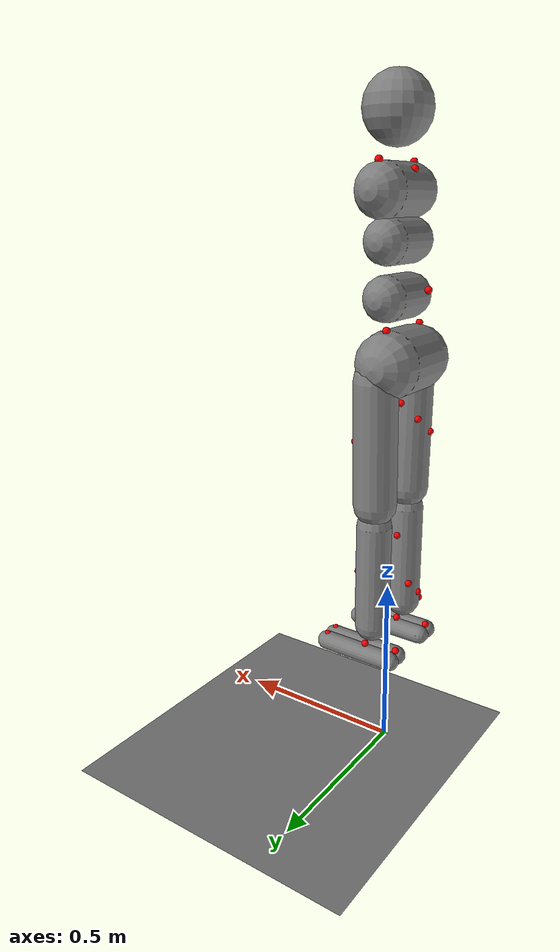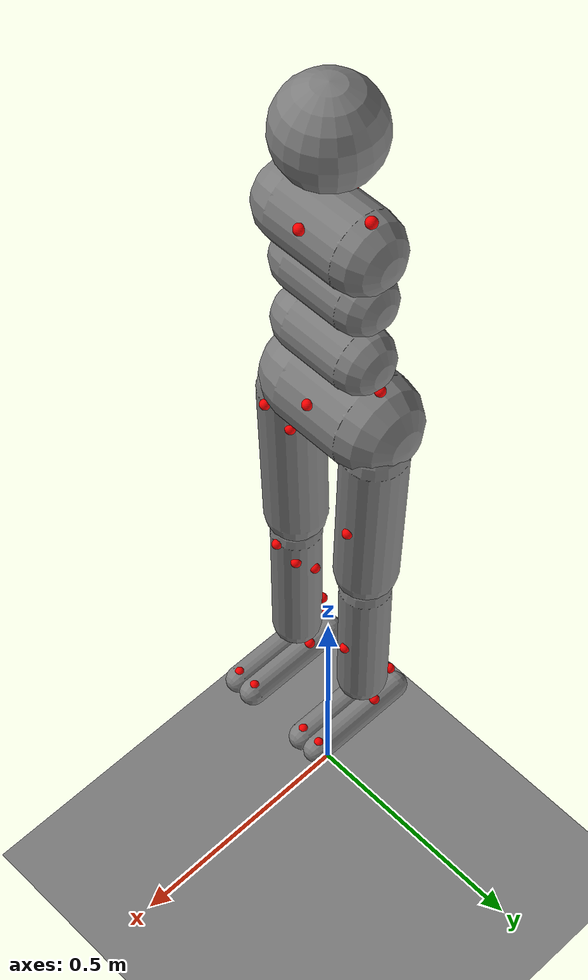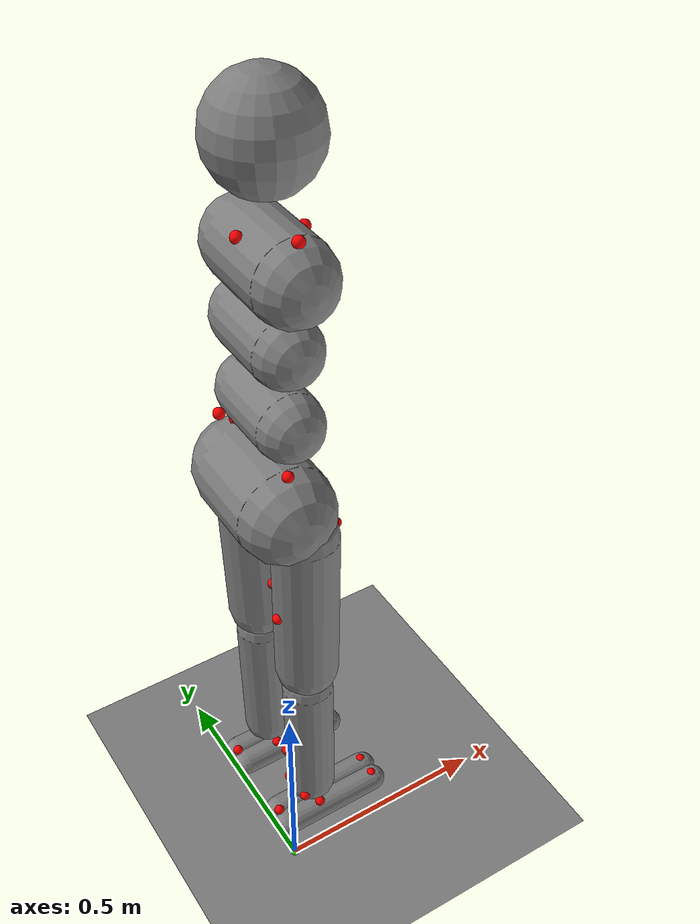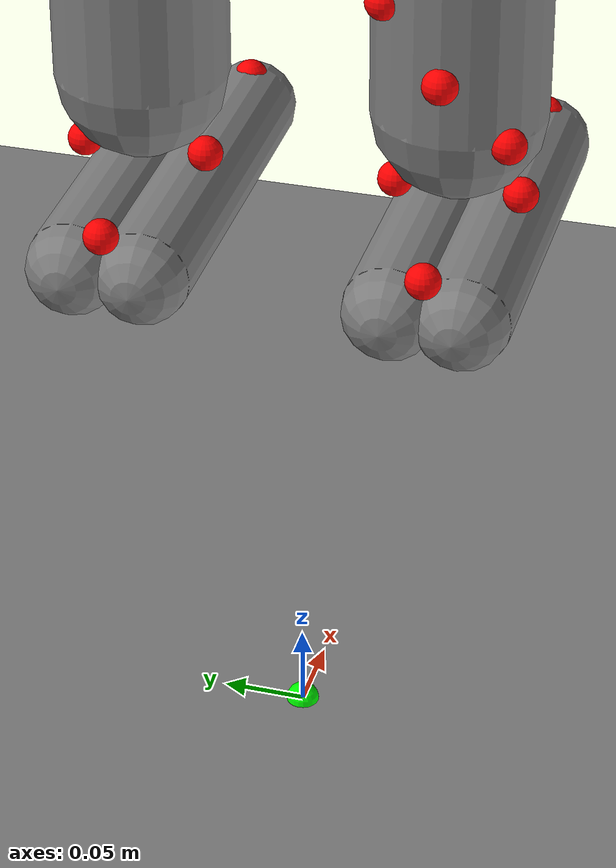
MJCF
<mujoco model="humanoid">
  <default>
    <default class="/"/>
    <default class="left_leg/"/>
    <default class="right_leg/"/>
  </default>
  <worldbody>
    <body name="floor" pos="0 0 0">
      <geom name="floor" class="/" type="plane" conaffinity="1" size="100 100 0.20000000000000001" pos="0 0 0"/>
    </body>
    <body name="m0" mocap="true" pos="0 0 0">
      <geom name="m0" class="/" type="sphere" size="0.01" rgba="0 1 0 1"/>
    </body>
    <body name="m1" mocap="true" pos="0 0 0">
      <geom name="m1" class="/" type="sphere" size="0.01" rgba="0 1 0 1"/>
    </body>
    <body name="m2" mocap="true" pos="0 0 0">
      <geom name="m2" class="/" type="sphere" size="0.01" rgba="0 1 0 1"/>
    </body>
    <body name="m3" mocap="true" pos="0 0 0">
      <geom name="m3" class="/" type="sphere" size="0.01" rgba="0 1 0 1"/>
    </body>
    <body name="m4" mocap="true" pos="0 0 0">
      <geom name="m4" class="/" type="sphere" size="0.01" rgba="0 1 0 1"/>
    </body>
    <body name="m5" mocap="true" pos="0 0 0">
      <geom name="m5" class="/" type="sphere" size="0.01" rgba="0 1 0 1"/>
    </body>
    <body name="m6" mocap="true" pos="0 0 0">
      <geom name="m6" class="/" type="sphere" size="0.01" rgba="0 1 0 1"/>
    </body>
    <body name="m7" mocap="true" pos="0 0 0">
      <geom name="m7" class="/" type="sphere" size="0.01" rgba="0 1 0 1"/>
    </body>
    <body name="m8" mocap="true" pos="0 0 0">
      <geom name="m8" class="/" type="sphere" size="0.01" rgba="0 1 0 1"/>
    </body>
    <body name="m9" mocap="true" pos="0 0 0">
      <geom name="m9" class="/" type="sphere" size="0.01" rgba="0 1 0 1"/>
    </body>
    <body name="m10" mocap="true" pos="0 0 0">
      <geom name="m10" class="/" type="sphere" size="0.01" rgba="0 1 0 1"/>
    </body>
    <body name="m11" mocap="true" pos="0 0 0">
      <geom name="m11" class="/" type="sphere" size="0.01" rgba="0 1 0 1"/>
    </body>
    <body name="m12" mocap="true" pos="0 0 0">
      <geom name="m12" class="/" type="sphere" size="0.01" rgba="0 1 0 1"/>
    </body>
    <body name="m13" mocap="true" pos="0 0 0">
      <geom name="m13" class="/" type="sphere" size="0.01" rgba="0 1 0 1"/>
    </body>
    <body name="m14" mocap="true" pos="0 0 0">
      <geom name="m14" class="/" type="sphere" size="0.01" rgba="0 1 0 1"/>
    </body>
    <body name="m15" mocap="true" pos="0 0 0">
      <geom name="m15" class="/" type="sphere" size="0.01" rgba="0 1 0 1"/>
    </body>
    <body name="m16" mocap="true" pos="0 0 0">
      <geom name="m16" class="/" type="sphere" size="0.01" rgba="0 1 0 1"/>
    </body>
    <body name="m17" mocap="true" pos="0 0 0">
      <geom name="m17" class="/" type="sphere" size="0.01" rgba="0 1 0 1"/>
    </body>
    <body name="m18" mocap="true" pos="0 0 0">
      <geom name="m18" class="/" type="sphere" size="0.01" rgba="0 1 0 1"/>
    </body>
    <body name="m19" mocap="true" pos="0 0 0">
      <geom name="m19" class="/" type="sphere" size="0.01" rgba="0 1 0 1"/>
    </body>
    <body name="m20" mocap="true" pos="0 0 0">
      <geom name="m20" class="/" type="sphere" size="0.01" rgba="0 1 0 1"/>
    </body>
    <body name="m21" mocap="true" pos="0 0 0">
      <geom name="m21" class="/" type="sphere" size="0.01" rgba="0 1 0 1"/>
    </body>
    <body name="m22" mocap="true" pos="0 0 0">
      <geom name="m22" class="/" type="sphere" size="0.01" rgba="0 1 0 1"/>
    </body>
    <body name="m23" mocap="true" pos="0 0 0">
      <geom name="m23" class="/" type="sphere" size="0.01" rgba="0 1 0 1"/>
    </body>
    <body name="m24" mocap="true" pos="0 0 0">
      <geom name="m24" class="/" type="sphere" size="0.01" rgba="0 1 0 1"/>
    </body>
    <body name="m25" mocap="true" pos="0 0 0">
      <geom name="m25" class="/" type="sphere" size="0.01" rgba="0 1 0 1"/>
    </body>
    <body name="m26" mocap="true" pos="0 0 0">
      <geom name="m26" class="/" type="sphere" size="0.01" rgba="0 1 0 1"/>
    </body>
    <body name="m27" mocap="true" pos="0 0 0">
      <geom name="m27" class="/" type="sphere" size="0.01" rgba="0 1 0 1"/>
    </body>
    <body name="m28" mocap="true" pos="0 0 0">
      <geom name="m28" class="/" type="sphere" size="0.01" rgba="0 1 0 1"/>
    </body>
    <body name="m29" mocap="true" pos="0 0 0">
      <geom name="m29" class="/" type="sphere" size="0.01" rgba="0 1 0 1"/>
    </body>
    <body name="m30" mocap="true" pos="0 0 0">
      <geom name="m30" class="/" type="sphere" size="0.01" rgba="0 1 0 1"/>
    </body>
    <body name="m31" mocap="true" pos="0 0 0">
      <geom name="m31" class="/" type="sphere" size="0.01" rgba="0 1 0 1"/>
    </body>
    <body name="m32" mocap="true" pos="0 0 0">
      <geom name="m32" class="/" type="sphere" size="0.01" rgba="0 1 0 1"/>
    </body>
    <body name="m33" mocap="true" pos="0 0 0">
      <geom name="m33" class="/" type="sphere" size="0.01" rgba="0 1 0 1"/>
    </body>
    <body name="m34" mocap="true" pos="0 0 0">
      <geom name="m34" class="/" type="sphere" size="0.01" rgba="0 1 0 1"/>
    </body>
    <body name="m35" mocap="true" pos="0 0 0">
      <geom name="m35" class="/" type="sphere" size="0.01" rgba="0 1 0 1"/>
    </body>
    <body name="m36" mocap="true" pos="0 0 0">
      <geom name="m36" class="/" type="sphere" size="0.01" rgba="0 1 0 1"/>
    </body>
    <body name="m37" mocap="true" pos="0 0 0">
      <geom name="m37" class="/" type="sphere" size="0.01" rgba="0 1 0 1"/>
    </body>
    <body name="m38" mocap="true" pos="0 0 0">
      <geom name="m38" class="/" type="sphere" size="0.01" rgba="0 1 0 1"/>
    </body>
    <body name="m39" mocap="true" pos="0 0 0">
      <geom name="m39" class="/" type="sphere" size="0.01" rgba="0 1 0 1"/>
    </body>
    <body name="torso" pos="0 0 1.5919999999999999">
      <freejoint name="root"/>
      <geom name="torso" class="/" type="capsule" size="0.070000000000000007" fromto="0 -0.070000000000000007 0 0 0.070000000000000007 0"/>
      <site name="C7" class="/" type="sphere" rgba="1 0 0 1" size="0.01" pos="-0.049497474683058325 0 0.049497474683058332"/>
      <site name="RSHO" class="/" type="sphere" rgba="1 0 0 1" size="0.01" pos="4.2862637970157367e-18 -0.087500000000000008 0.070000000000000007"/>
      <site name="LSHO" class="/" type="sphere" rgba="1 0 0 1" size="0.01" pos="4.2862637970157367e-18 0.087500000000000008 0.070000000000000007"/>
      <site name="CLAV" class="/" type="sphere" rgba="1 0 0 1" size="0.01" pos="0.060621778264910713 0 0.034999999999999996"/>
      <geom name="upper_waist" class="/" type="capsule" size="0.059999999999999998" fromto="-0.01 -0.059999999999999998 -0.12 -0.01 0.059999999999999998 -0.12"/>
      <body name="head" pos="0 0 0.19">
        <geom name="head" class="/" type="sphere" size="0.089999999999999997"/>
      </body>
      <body name="lower_waist" pos="-0.01 0 -0.26000000000000001" quat="1 0 -0.002 0">
        <geom name="lower_waist" class="/" type="capsule" size="0.059999999999999998" fromto="0 -0.059999999999999998 0 0 0.059999999999999998 0"/>
        <joint name="abdomen_z" class="/" type="hinge" pos="0 0 0.065000000000000002" axis="0 0 1" limited="true" solimplimit="0 0.98999999999999999 0.01" stiffness="20.0" range="-45 45" armature="0.01" damping="5.0"/>
        <joint name="abdomen_y" class="/" type="hinge" pos="0 0 0.065000000000000002" axis="0 1 0" limited="true" solimplimit="0 0.98999999999999999 0.01" stiffness="10.0" range="-75 30" armature="0.01" damping="5.0"/>
        <body name="pelvis" pos="0 0 -0.16500000000000001" quat="1 0 -0.002 0">
          <joint name="abdomen_x" class="/" type="hinge" pos="0 0 0.10000000000000001" axis="1 0 0" limited="true" solimplimit="0 0.98999999999999999 0.01" stiffness="10.0" range="-35 35" armature="0.01" damping="5.0"/>
          <geom name="butt" class="/" type="capsule" size="0.089999999999999997" fromto="-0.02 -0.070000000000000007 0 -0.02 0.070000000000000007 0"/>
          <site name="RASI" class="/" type="sphere" rgba="1 0 0 1" size="0.01" pos="-0.088404028665133749 0 0.18793852415718171"/>
          <site name="LASI" class="/" type="sphere" rgba="1 0 0 1" size="0.01" pos="-0.019999999999999993 -0.087500000000000008 0.089999999999999997"/>
          <site name="RPSI" class="/" type="sphere" rgba="1 0 0 1" size="0.01" pos="-0.019999999999999993 0.087500000000000008 0.089999999999999997"/>
          <site name="LPSI" class="/" type="sphere" rgba="1 0 0 1" size="0.01" pos="0.057942286340599475 0 0.044999999999999991"/>
          <site name="left_leg_site" class="/" size="9.9999999999999995e-07 9.9999999999999995e-07 9.9999999999999995e-07" pos="0 0.10000000000000001 -0.040000000000000001"/>
          <body pos="0 0.10000000000000001 -0.040000000000000001" name="left_leg/">
            <body name="left_leg/thigh">
              <joint name="left_leg/hip_x" class="left_leg/" type="hinge" axis="1 0 0" limited="true" solimplimit="0 0.98999999999999999 0.01" stiffness="10.0" range="-25 5" armature="0.01" damping="5.0"/>
              <joint name="left_leg/hip_z" class="left_leg/" type="hinge" axis="0 0 1" limited="true" solimplimit="0 0.98999999999999999 0.01" stiffness="10.0" range="-60 35" armature="0.01" damping="5.0"/>
              <joint name="left_leg/hip_y" class="left_leg/" type="hinge" axis="0 1 0" limited="true" solimplimit="0 0.98999999999999999 0.01" stiffness="20.0" range="-110 20" armature="0.01" damping="5.0"/>
              <geom name="left_leg/thigh" class="left_leg/" type="capsule" size="0.059999999999999998" fromto="0 0 0 0 -0.01 -0.34000000000000002"/>
              <site name="left_leg/LGT" class="left_leg/" type="sphere" rgba="1 0 0 1" size="0.01" pos="0.059999999999999998 0 -0.17000000000000001"/>
              <site name="left_leg/LT1" class="left_leg/" type="sphere" rgba="1 0 0 1" size="0.01" pos="0.059999999999999998 0 -0.17000000000000001"/>
              <site name="left_leg/LT2" class="left_leg/" type="sphere" rgba="1 0 0 1" size="0.01" pos="0.059999999999999998 0 -0.17000000000000001"/>
              <site name="left_leg/LT3" class="left_leg/" type="sphere" rgba="1 0 0 1" size="0.01" pos="0.059999999999999998 0 -0.17000000000000001"/>
              <site name="left_leg/LT4" class="left_leg/" type="sphere" rgba="1 0 0 1" size="0.01" pos="0.059999999999999998 0 -0.17000000000000001"/>
              <body name="left_leg/shin" pos="0 -0.01 -0.40300000000000002">
                <joint name="left_leg/knee" class="left_leg/" type="hinge" pos="0 0 0.02" axis="0 -1 0" limited="true" solimplimit="0 0.98999999999999999 0.01" stiffness="1.0" range="-160 2" armature="0.01" damping="0.2"/>
                <geom name="left_leg/shin" class="left_leg/" type="capsule" size="0.049000000000000002" fromto="0 0 0 0 0 -0.29999999999999999"/>
                <site name="left_leg/LKNL" class="left_leg/" type="sphere" rgba="1 0 0 1" size="0.01" pos="0.049000000000000002 0 -0.14999999999999999"/>
                <site name="left_leg/LKNM" class="left_leg/" type="sphere" rgba="1 0 0 1" size="0.01" pos="0.049000000000000002 0 -0.14999999999999999"/>
                <site name="left_leg/LS1" class="left_leg/" type="sphere" rgba="1 0 0 1" size="0.01" pos="0.049000000000000002 0 -0.14999999999999999"/>
                <site name="left_leg/LS2" class="left_leg/" type="sphere" rgba="1 0 0 1" size="0.01" pos="0.049000000000000002 0 -0.14999999999999999"/>
                <site name="left_leg/LS3" class="left_leg/" type="sphere" rgba="1 0 0 1" size="0.01" pos="0.049000000000000002 0 -0.14999999999999999"/>
                <site name="left_leg/LS4" class="left_leg/" type="sphere" rgba="1 0 0 1" size="0.01" pos="0.049000000000000002 0 -0.14999999999999999"/>
                <body name="left_leg/foot" pos="0 0 -0.39000000000000001">
                  <joint name="left_leg/ankle_y" class="left_leg/" type="hinge" pos="0 0 0.080000000000000002" axis="0 1 0" limited="true" solimplimit="0 0.98999999999999999 0.01" stiffness="6.0" range="-50 50" armature="0.01" damping="0.2"/>
                  <joint name="left_leg/ankle_x" class="left_leg/" type="hinge" pos="0 0 0.040000000000000001" axis="1 0 0.5" limited="true" solimplimit="0 0.98999999999999999 0.01" stiffness="3.0" range="-50 50" armature="0.01" damping="0.2"/>
                  <geom name="left_leg/right_foot" class="left_leg/" type="capsule" size="0.027" fromto="-0.070000000000000007 0.02 0 0.14000000000000001 0.02 0"/>
                  <geom name="left_leg/left_foot" class="left_leg/" type="capsule" size="0.027" fromto="-0.070000000000000007 -0.02 0 0.14000000000000001 -0.02 0"/>
                  <site name="left_leg/LANL" class="left_leg/" type="sphere" rgba="1 0 0 1" size="0.01" pos="0 0.035353318532759664 0.042132444371543794"/>
                  <site name="left_leg/LANM" class="left_leg/" type="sphere" rgba="1 0 0 1" size="0.01" pos="0 -0.035353318532759664 0.042132444371543794"/>
                  <site name="left_leg/LHEE" class="left_leg/" type="sphere" rgba="1 0 0 1" size="0.01" pos="-0.078750000000000014 1.6532731788489268e-18 0.027"/>
                  <site name="left_leg/LM1" class="left_leg/" type="sphere" rgba="1 0 0 1" size="0.01" pos="0.13650000000000001 -0.021213203435596423 0.021213203435596427"/>
                  <site name="left_leg/LM5" class="left_leg/" type="sphere" rgba="1 0 0 1" size="0.01" pos="0.13650000000000001 0.021213203435596427 0.021213203435596423"/>
                </body>
              </body>
            </body>
          </body>
          <site name="right_leg_site" class="/" size="9.9999999999999995e-07 9.9999999999999995e-07 9.9999999999999995e-07" pos="0 -0.10000000000000001 -0.040000000000000001"/>
          <body pos="0 -0.10000000000000001 -0.040000000000000001" name="right_leg/">
            <body name="right_leg/thigh">
              <joint name="right_leg/hip_x" class="right_leg/" type="hinge" axis="1 0 0" limited="true" solimplimit="0 0.98999999999999999 0.01" stiffness="10.0" range="-25 5" armature="0.01" damping="5.0"/>
              <joint name="right_leg/hip_z" class="right_leg/" type="hinge" axis="0 0 1" limited="true" solimplimit="0 0.98999999999999999 0.01" stiffness="10.0" range="-60 35" armature="0.01" damping="5.0"/>
              <joint name="right_leg/hip_y" class="right_leg/" type="hinge" axis="0 1 0" limited="true" solimplimit="0 0.98999999999999999 0.01" stiffness="20.0" range="-110 20" armature="0.01" damping="5.0"/>
              <geom name="right_leg/thigh" class="right_leg/" type="capsule" size="0.059999999999999998" fromto="0 0 0 0 0.01 -0.34000000000000002"/>
              <site name="right_leg/RGT" class="right_leg/" type="sphere" rgba="1 0 0 1" size="0.01" pos="0.059999999999999998 0 0"/>
              <site name="right_leg/RT1" class="right_leg/" type="sphere" rgba="1 0 0 1" size="0.01" pos="0.042426406871192854 0.042426406871192847 -0.04250000000000001"/>
              <site name="right_leg/RT2" class="right_leg/" type="sphere" rgba="1 0 0 1" size="0.01" pos="3.6739403974420592e-18 0.059999999999999998 -0.085000000000000006"/>
              <site name="right_leg/RT3" class="right_leg/" type="sphere" rgba="1 0 0 1" size="0.01" pos="-0.042426406871192847 0.042426406871192854 -0.1275"/>
              <site name="right_leg/RT4" class="right_leg/" type="sphere" rgba="1 0 0 1" size="0.01" pos="-0.059999999999999998 7.3478807948841184e-18 -0.17000000000000001"/>
              <body name="right_leg/shin" pos="0 0.01 -0.40300000000000002">
                <joint name="right_leg/knee" class="right_leg/" type="hinge" pos="0 0 0.02" axis="0 -1 0" limited="true" solimplimit="0 0.98999999999999999 0.01" stiffness="1.0" range="-160 2" armature="0.01" damping="0.2"/>
                <geom name="right_leg/shin" class="right_leg/" type="capsule" size="0.049000000000000002" fromto="0 0 0 0 0 -0.29999999999999999"/>
                <site name="right_leg/RKNL" class="right_leg/" type="sphere" rgba="1 0 0 1" size="0.01" pos="0.049000000000000002 0 0"/>
                <site name="right_leg/RKNM" class="right_leg/" type="sphere" rgba="1 0 0 1" size="0.01" pos="0.034648232278140831 0.034648232278140824 -0.037500000000000006"/>
                <site name="right_leg/RS1" class="right_leg/" type="sphere" rgba="1 0 0 1" size="0.01" pos="3.0003846579110156e-18 0.049000000000000002 -0.074999999999999997"/>
                <site name="right_leg/RS2" class="right_leg/" type="sphere" rgba="1 0 0 1" size="0.01" pos="-0.034648232278140824 0.034648232278140831 -0.22499999999999998"/>
                <site name="right_leg/RS3" class="right_leg/" type="sphere" rgba="1 0 0 1" size="0.01" pos="-0.049000000000000002 6.0007693158220313e-18 -0.26249999999999996"/>
                <site name="right_leg/RS4" class="right_leg/" type="sphere" rgba="1 0 0 1" size="0.01" pos="-0.034648232278140838 -0.034648232278140824 -0.29999999999999999"/>
                <body name="right_leg/foot" pos="0 0 -0.39000000000000001">
                  <joint name="right_leg/ankle_y" class="right_leg/" type="hinge" pos="0 0 0.080000000000000002" axis="0 1 0" limited="true" solimplimit="0 0.98999999999999999 0.01" stiffness="6.0" range="-50 50" armature="0.01" damping="0.2"/>
                  <joint name="right_leg/ankle_x" class="right_leg/" type="hinge" pos="0 0 0.040000000000000001" axis="1 0 0.5" limited="true" solimplimit="0 0.98999999999999999 0.01" stiffness="3.0" range="-50 50" armature="0.01" damping="0.2"/>
                  <geom name="right_leg/right_foot" class="right_leg/" type="capsule" size="0.027" fromto="-0.070000000000000007 -0.02 0 0.14000000000000001 -0.02 0"/>
                  <geom name="right_leg/left_foot" class="right_leg/" type="capsule" size="0.027" fromto="-0.070000000000000007 0.02 0 0.14000000000000001 0.02 0"/>
                  <site name="right_leg/RANL" class="right_leg/" type="sphere" rgba="1 0 0 1" size="0.01" pos="0 -0.035353318532759664 0.042132444371543794"/>
                  <site name="right_leg/RANM" class="right_leg/" type="sphere" rgba="1 0 0 1" size="0.01" pos="0 0.035353318532759664 0.042132444371543794"/>
                  <site name="right_leg/RHEE" class="right_leg/" type="sphere" rgba="1 0 0 1" size="0.01" pos="-0.078750000000000014 1.6532731788489268e-18 0.027"/>
                  <site name="right_leg/RM1" class="right_leg/" type="sphere" rgba="1 0 0 1" size="0.01" pos="0.13650000000000001 0.021213203435596427 0.021213203435596423"/>
                  <site name="right_leg/RM5" class="right_leg/" type="sphere" rgba="1 0 0 1" size="0.01" pos="0.13650000000000001 -0.021213203435596423 0.021213203435596427"/>
                </body>
              </body>
            </body>
          </body>
        </body>
      </body>
    </body>
  </worldbody>
</mujoco>
